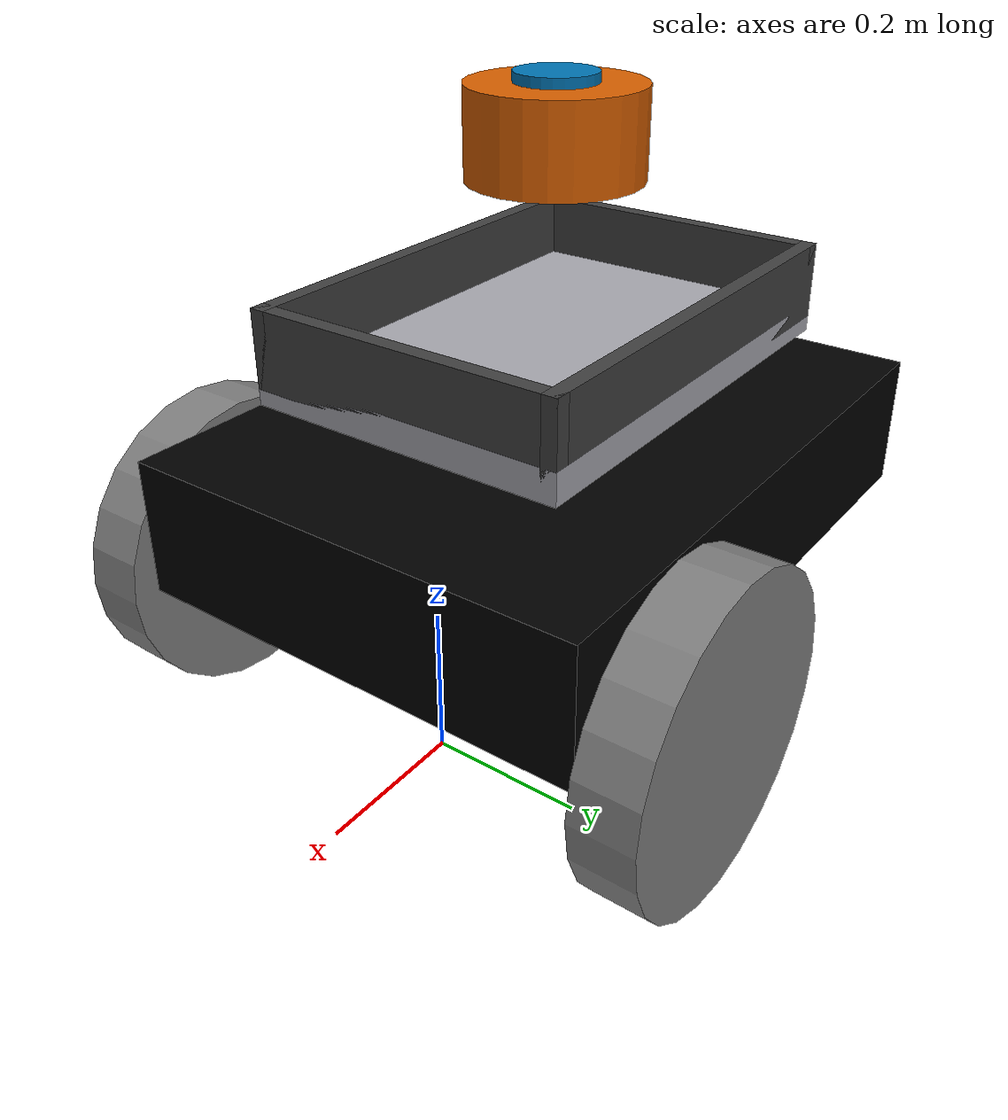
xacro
<?xml version="1.0"?>
<robot name="robotics" xmlns:xacro="http://ros.org/wiki/xacro">
  <!-- Define robot constants -->
  <xacro:property name="base_width" value="0.62"/>
  <xacro:property name="base_length" value="0.82"/>
  <xacro:property name="base_height" value="0.18"/>
  <xacro:property name="tray_length" value="0.60"/>
  <xacro:property name="tray_width" value="0.42"/>
  <xacro:property name="tray_height" value="0.04"/>
  <xacro:property name="tray_rail_height" value="0.10"/>

  <xacro:property name="wheel_radius" value="0.20"/>
  <xacro:property name="wheel_width" value="0.08"/>
  <xacro:property name="wheel_ygap" value="0.05"/>
  <xacro:property name="wheel_zoff" value="0.1"/>
  <xacro:property name="wheel_xoff" value="0.24"/>

  <xacro:property name="caster_xoff" value="0.28"/>

  <!-- Define some commonly used intertial properties  -->
  <xacro:macro name="box_inertia" params="m w h d">
    <inertial>
      <origin xyz="0 0 0" rpy="${pi/2} 0 ${pi/2}"/>
      <mass value="${m}"/>
      <inertia ixx="${(m/12) * (h*h + d*d)}" ixy="0.0" ixz="0.0" iyy="${(m/12) * (w*w + d*d)}" iyz="0.0" izz="${(m/12) * (w*w + h*h)}"/>
    </inertial>
  </xacro:macro>

  <xacro:macro name="cylinder_inertia" params="m r h">
    <inertial>
      <origin xyz="0 0 0" rpy="${pi/2} 0 0" />
      <mass value="${m}"/>
      <inertia ixx="${(m/12) * (3*r*r + h*h)}" ixy = "0" ixz = "0" iyy="${(m/12) * (3*r*r + h*h)}" iyz = "0" izz="${(m/2) * (r*r)}"/>
    </inertial>
  </xacro:macro>

  <xacro:macro name="sphere_inertia" params="m r">
    <inertial>
      <mass value="${m}"/>
      <inertia ixx="${(2/5) * m * (r*r)}" ixy="0.0" ixz="0.0" iyy="${(2/5) * m * (r*r)}" iyz="0.0" izz="${(2/5) * m * (r*r)}"/>
    </inertial>
  </xacro:macro>

   <!-- Robot Footprint -->
  <link name="base_footprint">
  	<xacro:box_inertia m="0" w="0" d="0" h="0"/>
  </link>

  <joint name="base_joint" type="fixed">
    <parent link="base_footprint"/>
    <child link="base_link"/>
    <origin xyz="${-1 * wheel_xoff} 0.0 ${(wheel_radius+wheel_zoff)}" rpy="0 0 0"/>
  </joint>

  <!-- Robot Base -->
  <link name="base_link">
    <visual>
      <geometry>
        <box size="${base_length} ${base_width} ${base_height}"/>
      </geometry>
      <material name="Cyan">
        <color rgba="0.0 0.0 0.0 1.0"/>
      </material>
    </visual>

    <collision>
      <geometry>
        <box size="${base_length} ${base_width} ${base_height}"/>
      </geometry>
    </collision>

    <xacro:box_inertia m="15" w="${base_width}" d="${base_length}" h="${base_height}"/>
  </link>

  <link name="tray_link">
    <visual>
      <geometry>
        <box size="${tray_length} ${tray_width} ${tray_height}"/>
      </geometry>
      <material name="Silver">
        <color rgba="0.65 0.65 0.68 1.0"/>
      </material>
    </visual>

    <collision>
      <geometry>
        <box size="${tray_length} ${tray_width} ${tray_height}"/>
      </geometry>
    </collision>

    <xacro:box_inertia m="2.0" w="${tray_width}" d="${tray_length}" h="${tray_height}"/>
  </link>

  <joint name="tray_joint" type="fixed">
    <parent link="base_link"/>
    <child link="tray_link"/>
    <origin xyz="0 0 0.17" rpy="0 0 0"/>
  </joint>

  <xacro:macro name="tray_rail" params="name x y z lx ly lz">
    <link name="${name}">
      <visual>
        <geometry>
          <box size="${lx} ${ly} ${lz}"/>
        </geometry>
        <material name="DarkGray">
          <color rgba="0.25 0.25 0.25 1.0"/>
        </material>
      </visual>
      <collision>
        <geometry>
          <box size="${lx} ${ly} ${lz}"/>
        </geometry>
      </collision>
      <xacro:box_inertia m="0.2" w="${ly}" d="${lx}" h="${lz}"/>
    </link>
    <joint name="${name}_joint" type="fixed">
      <parent link="tray_link"/>
      <child link="${name}"/>
      <origin xyz="${x} ${y} ${z}" rpy="0 0 0"/>
    </joint>
  </xacro:macro>

  <xacro:tray_rail name="tray_front_rail" x="${tray_length/2 - 0.01}" y="0" z="${tray_rail_height/2}" lx="0.02" ly="${tray_width}" lz="${tray_rail_height}"/>
  <xacro:tray_rail name="tray_back_rail" x="${-tray_length/2 + 0.01}" y="0" z="${tray_rail_height/2}" lx="0.02" ly="${tray_width}" lz="${tray_rail_height}"/>
  <xacro:tray_rail name="tray_left_rail" x="0" y="${tray_width/2 - 0.01}" z="${tray_rail_height/2}" lx="${tray_length}" ly="0.02" lz="${tray_rail_height}"/>
  <xacro:tray_rail name="tray_right_rail" x="0" y="${-tray_width/2 + 0.01}" z="${tray_rail_height/2}" lx="${tray_length}" ly="0.02" lz="${tray_rail_height}"/>

<!-- gps link -->
  <link name="gps_link">
    <visual>
      <geometry>
        <box size="0.001 0.001 0.001"/>
      </geometry>
    </visual>

  </link>
  <!-- gps joint -->
  <joint name="gps_joint" type="fixed">
    <parent link="base_footprint"/>
    <child link="gps_link"/>
    <origin xyz="0 0 0.01"/>
  </joint>

  <link name="wheel_left_link">
    <visual>
      <origin xyz="0 0 0" rpy="${pi/2} 0 0"/>
      <geometry>
          <cylinder radius="${wheel_radius}" length="${wheel_width}"/>
      </geometry>
      <material name="Gray">
        <color rgba="0.5 0.5 0.5 1.0"/>
      </material>
    </visual>

    <collision>
      <origin xyz="0 0 0" rpy="${pi/2} 0 0"/>
      <geometry>
        <cylinder radius="${wheel_radius}" length="${wheel_width}"/>
      </geometry>
    </collision>

    <xacro:cylinder_inertia m="0.5" r="${wheel_radius}" h="${wheel_width}"/>
  </link>

  <joint name="wheel_left_joint" type="continuous">
    <parent link="base_link"/>
    <child link="wheel_left_link"/>
    <origin xyz="${wheel_xoff} ${1*(base_width/2+wheel_ygap)} ${-wheel_zoff}" rpy="0 0 0"/>
    <axis xyz="0 1 0"/>
  </joint>

  <link name="wheel_right_link">
    <visual>
      <origin xyz="0 0 0" rpy="${pi/2} 0 0"/>
      <geometry>
          <cylinder radius="${wheel_radius}" length="${wheel_width}"/>
      </geometry>
      <material name="Gray">
        <color rgba="0.5 0.5 0.5 1.0"/>
      </material>
    </visual>

    <collision>
      <origin xyz="0 0 0" rpy="${pi/2} 0 0"/>
      <geometry>
        <cylinder radius="${wheel_radius}" length="${wheel_width}"/>
      </geometry>
    </collision>

    <xacro:cylinder_inertia m="0.5" r="${wheel_radius}" h="${wheel_width}"/>
  </link>

  <joint name="wheel_right_joint" type="continuous">
    <parent link="base_link"/>
    <child link="wheel_right_link"/>
    <origin xyz="${wheel_xoff} ${-1 * (base_width/2+wheel_ygap)} ${-wheel_zoff}" rpy="0 0 0"/>
    <axis xyz="0 1 0"/>
  </joint>

  <link name="caster_link">
    <visual>
      <geometry>
        <sphere radius="${(wheel_radius+wheel_zoff-(base_height/2))/2}"/>
      </geometry>
      <material name="Cyan_2">
        <color rgba="1.0 0.0 1.0 1.0"/>
      </material>
    </visual>

    <collision>
      <origin xyz="0 0 0" rpy="0 0 0"/>
      <geometry>
        <sphere radius="${(wheel_radius+wheel_zoff-(base_height/2))/2}"/>
      </geometry>
    </collision>

    <xacro:sphere_inertia m="0.5" r="${(wheel_radius+wheel_zoff-(base_height/2))/2}"/>
  </link>

  <joint name="caster_joint" type="fixed">
    <parent link="base_link"/>
    <child link="caster_link"/>
    <origin xyz="${-caster_xoff} 0.0 ${-(base_height)-0.015}" rpy="0 0 0"/>
  </joint>

  <link name="imu_link">
    <visual>
      <geometry>
        <box size="0.1 0.1 0.1"/>
      </geometry>
    </visual>

    <collision>
      <geometry>
        <box size="0.1 0.1 0.1"/>
      </geometry>
    </collision>

    <xacro:box_inertia m="0.1" w="0.1" d="0.1" h="0.1"/>
  </link>

  <joint name="imu_joint" type="fixed">
    <parent link="base_link"/>
    <child link="imu_link"/>
    <origin xyz="0 0 0.01"/>
  </joint>

 <link name="os_sensor">
    <inertial>
      <origin xyz="0 0 0" rpy="0 0 0"/>
      <mass value="0.125"/>
      <inertia ixx="0.001"  ixy="0"  ixz="0" iyy="0.001" iyz="0" izz="0.001" />
    </inertial>

    <collision>
      <origin xyz="0 0 0" rpy="0 0 0"/>
      <geometry>
         <cylinder radius="0.0508" length="0.055"/>
      </geometry>
    </collision>

    <visual>
      <origin xyz="0 0 0" rpy="0 0 0"/>
      <geometry>
         <cylinder radius="0.0508" length="0.055"/>
      </geometry>
    </visual>
  </link>

  <joint name="os_joint" type="fixed">
    <parent link="base_link"/>
    <child link="os_sensor"/>
    <origin xyz="0 0 0.48" rpy="0 0 0"/>
  </joint>

 <link name="lidar_link">
    <inertial>
      <origin xyz="0 0 0" rpy="0 0 0"/>
      <mass value="0.125"/>
      <inertia ixx="0.001"  ixy="0"  ixz="0" iyy="0.001" iyz="0" izz="0.001" />
    </inertial>

    <collision>
      <origin xyz="0 0 0" rpy="0 0 0"/>
      <geometry>
         <cylinder radius="0.108" length="0.11"/>
      </geometry>
    </collision>

    <visual>
      <origin xyz="0 0 0" rpy="0 0 0"/>
      <geometry>
         <cylinder radius="0.108" length="0.11"/>
      </geometry>
    </visual>
  </link>

  <joint name="lidar_joint" type="fixed">
    <parent link="base_link"/>
    <child link="lidar_link"/>
    <origin xyz="0 0 0.44" rpy="0 0 0"/>
  </joint>

  <link name="camera_link">
    <visual>
      <origin xyz="0 0 0" rpy="0 0 0"/>
      <geometry>
        <box size="0.015 0.130 0.022"/>
      </geometry>
    </visual>

    <collision>
      <origin xyz="0 0 0" rpy="0 0 0"/>
      <geometry>
        <box size="0.015 0.130 0.022"/>
      </geometry>
    </collision>

    <inertial>
      <origin xyz="0 0 0" rpy="0 0 0"/>
      <mass value="0.035"/>
      <inertia ixx="0.001"  ixy="0"  ixz="0" iyy="0.001" iyz="0" izz="0.001" />
    </inertial>
  </link>

  <joint name="camera_joint" type="fixed">
    <parent link="base_link"/>
    <child link="camera_link"/>
    <origin xyz="0.215 0 0.05" rpy="0 0 0"/>
  </joint>

  <!-- Add four cameras positioned diagonally at 45-degree angles -->
  <xacro:macro name="add_camera" params="name x y z roll pitch yaw">
    <link name="${name}_link">
      <visual>
        <origin xyz="0 0 0" rpy="0 0 0"/>
        <geometry>
          <box size="0.015 0.130 0.022"/>
        </geometry>
      </visual>
    </link>
    <joint name="${name}_joint" type="fixed">
      <parent link="base_link"/>
      <child link="${name}_link"/>
      <origin xyz="${x} ${y} ${z}" rpy="${roll} ${pitch} ${yaw}"/>
    </joint>
  </xacro:macro>

  <!-- Adding four cameras in diagonal directions -->

  <!-- Include gazebo macro -->
  <xacro:include filename="$(find robotics_description)/urdf/robotics.gazebo.xacro" />
</robot>
